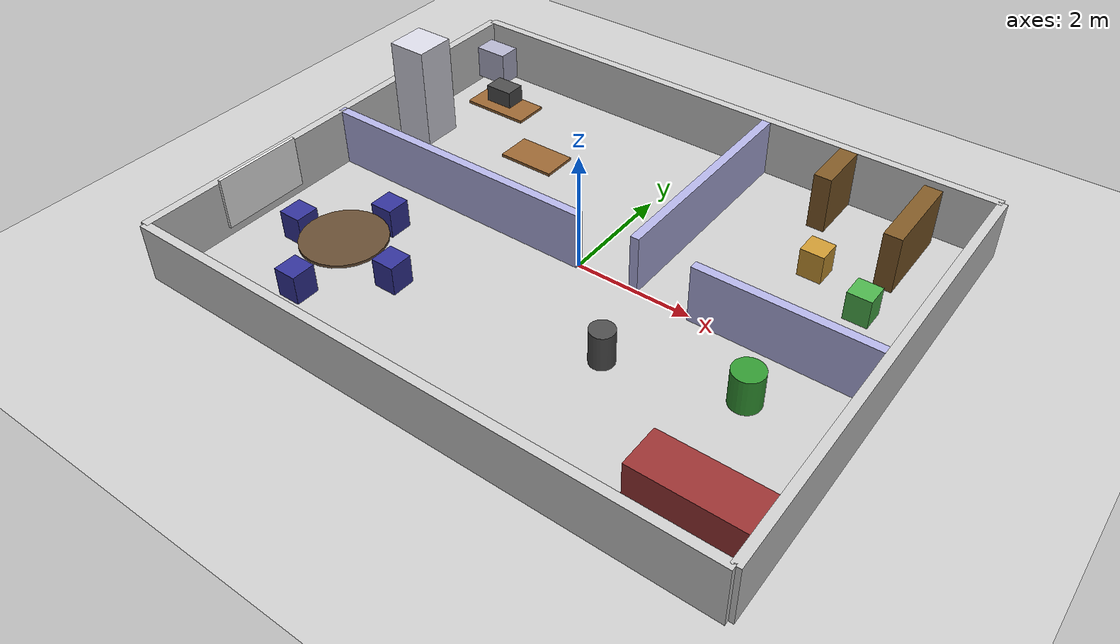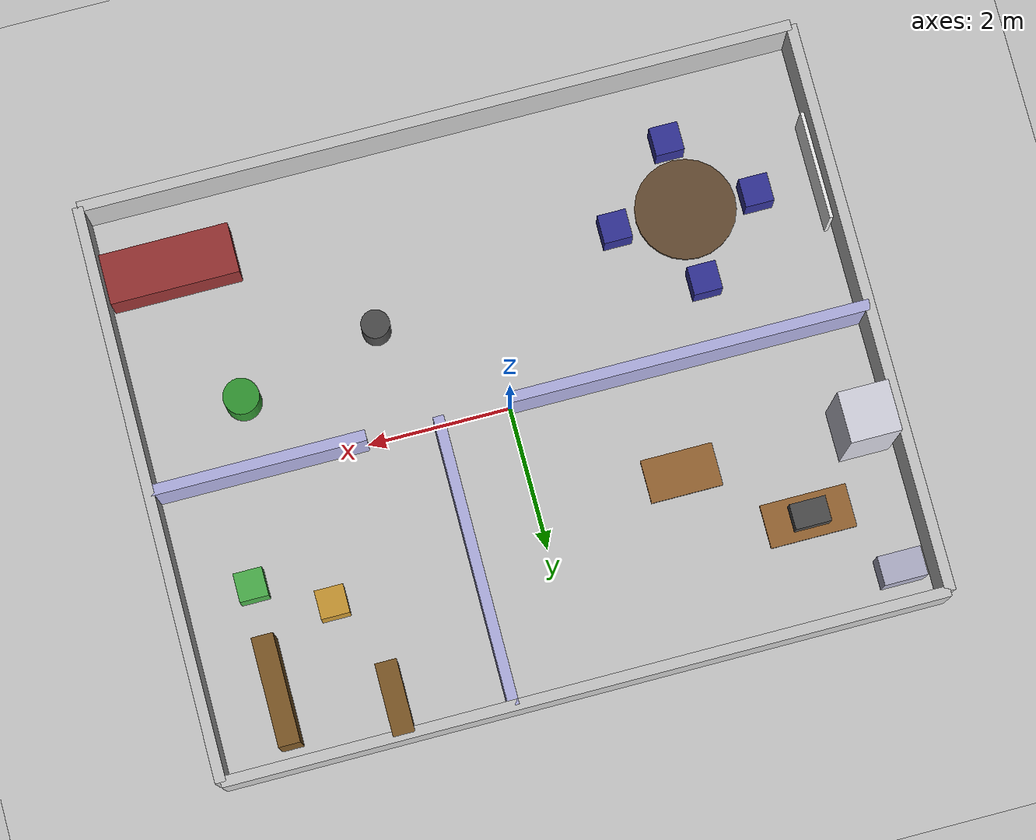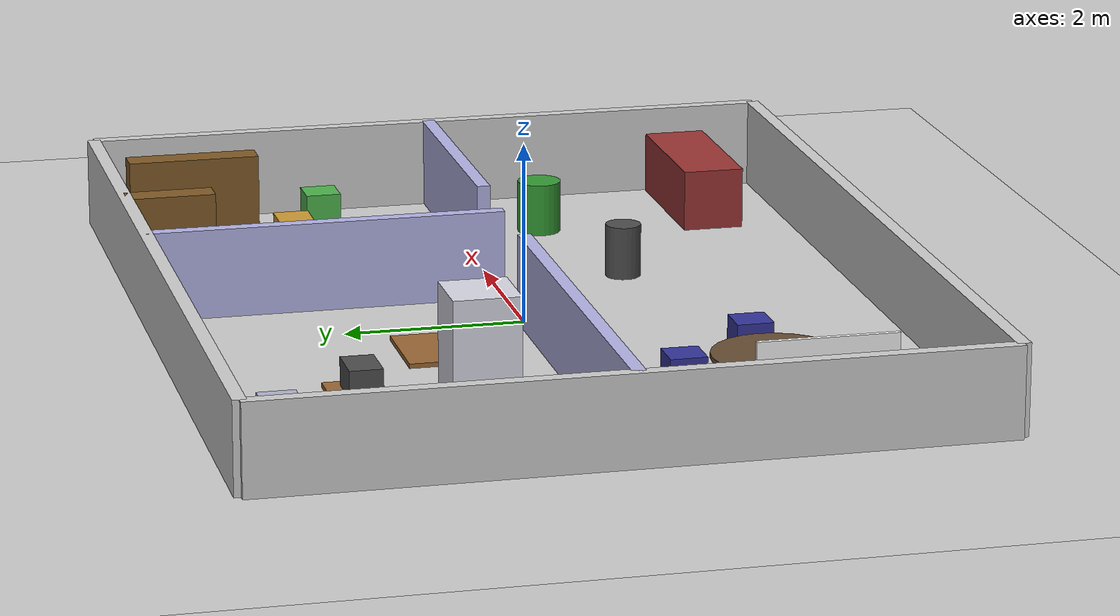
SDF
<?xml version="1.0" ?>
<sdf version="1.6">
  <world name="office_semantic">

    <!-- Lighting -->
    <include>
      <uri>model://sun</uri>
    </include>
    <include>
      <uri>model://ground_plane</uri>
    </include>

    <physics name="default_physics" default="0" type="ode">
      <max_step_size>0.01</max_step_size>
      <real_time_factor>1</real_time_factor>
      <real_time_update_rate>100</real_time_update_rate>
    </physics>

    <!-- ===== OUTER WALLS (10m x 8m office) ===== -->
    <!-- North wall -->
    <model name="wall_north">
      <static>true</static>
      <pose>0 4 0.5 0 0 0</pose>
      <link name="link">
        <collision name="collision"><geometry><box><size>10 0.15 1</size></box></geometry></collision>
        <visual name="visual"><geometry><box><size>10 0.15 1</size></box></geometry>
          <material><ambient>0.8 0.8 0.8 1</ambient></material></visual>
      </link>
    </model>

    <!-- South wall -->
    <model name="wall_south">
      <static>true</static>
      <pose>0 -4 0.5 0 0 0</pose>
      <link name="link">
        <collision name="collision"><geometry><box><size>10 0.15 1</size></box></geometry></collision>
        <visual name="visual"><geometry><box><size>10 0.15 1</size></box></geometry>
          <material><ambient>0.8 0.8 0.8 1</ambient></material></visual>
      </link>
    </model>

    <!-- East wall -->
    <model name="wall_east">
      <static>true</static>
      <pose>5 0 0.5 0 0 0</pose>
      <link name="link">
        <collision name="collision"><geometry><box><size>0.15 8 1</size></box></geometry></collision>
        <visual name="visual"><geometry><box><size>0.15 8 1</size></box></geometry>
          <material><ambient>0.8 0.8 0.8 1</ambient></material></visual>
      </link>
    </model>

    <!-- West wall -->
    <model name="wall_west">
      <static>true</static>
      <pose>-5 0 0.5 0 0 0</pose>
      <link name="link">
        <collision name="collision"><geometry><box><size>0.15 8 1</size></box></geometry></collision>
        <visual name="visual"><geometry><box><size>0.15 8 1</size></box></geometry>
          <material><ambient>0.8 0.8 0.8 1</ambient></material></visual>
      </link>
    </model>

    <!-- ===== INTERIOR DIVIDERS ===== -->
    <!-- Horizontal divider (splits north/south halves), with gap for hallway -->
    <model name="divider_h_west">
      <static>true</static>
      <pose>-2.5 0 0.5 0 0 0</pose>
      <link name="link">
        <collision name="collision"><geometry><box><size>5 0.15 1</size></box></geometry></collision>
        <visual name="visual"><geometry><box><size>5 0.15 1</size></box></geometry>
          <material><ambient>0.7 0.7 0.9 1</ambient></material></visual>
      </link>
    </model>

    <model name="divider_h_east">
      <static>true</static>
      <pose>3.5 0 0.5 0 0 0</pose>
      <link name="link">
        <collision name="collision"><geometry><box><size>3 0.15 1</size></box></geometry></collision>
        <visual name="visual"><geometry><box><size>3 0.15 1</size></box></geometry>
          <material><ambient>0.7 0.7 0.9 1</ambient></material></visual>
      </link>
    </model>

    <!-- Vertical divider splitting kitchen/pantry (north side) -->
    <model name="divider_v_north">
      <static>true</static>
      <pose>1 2 0.5 0 0 1.5708</pose>
      <link name="link">
        <collision name="collision"><geometry><box><size>4 0.15 1</size></box></geometry></collision>
        <visual name="visual"><geometry><box><size>4 0.15 1</size></box></geometry>
          <material><ambient>0.7 0.7 0.9 1</ambient></material></visual>
      </link>
    </model>

    <!-- ===== KITCHEN ZONE (top-left: x=-5..1, y=0..4) ===== -->
    <!-- Kitchen table 1 -->
    <model name="kitchen_table_1">
      <static>true</static>
      <pose>-3.5 2.5 0.4 0 0 0</pose>
      <link name="link">
        <collision name="collision"><geometry><box><size>1.2 0.6 0.05</size></box></geometry></collision>
        <visual name="visual"><geometry><box><size>1.2 0.6 0.05</size></box></geometry>
          <material><ambient>0.6 0.4 0.2 1</ambient></material></visual>
      </link>
    </model>

    <!-- Microwave-like box on table -->
    <model name="microwave">
      <static>true</static>
      <pose>-3.5 2.5 0.65 0 0 0</pose>
      <link name="link">
        <collision name="collision"><geometry><box><size>0.5 0.35 0.3</size></box></geometry></collision>
        <visual name="visual"><geometry><box><size>0.5 0.35 0.3</size></box></geometry>
          <material><ambient>0.3 0.3 0.3 1</ambient></material></visual>
      </link>
    </model>

    <!-- Sink-like box -->
    <model name="sink">
      <static>true</static>
      <pose>-4.5 3.5 0.5 0 0 0</pose>
      <link name="link">
        <collision name="collision"><geometry><box><size>0.6 0.4 0.6</size></box></geometry></collision>
        <visual name="visual"><geometry><box><size>0.6 0.4 0.6</size></box></geometry>
          <material><ambient>0.7 0.7 0.8 1</ambient></material></visual>
      </link>
    </model>

    <!-- Refrigerator-like box -->
    <model name="refrigerator">
      <static>true</static>
      <pose>-4.5 1.5 0.9 0 0 0</pose>
      <link name="link">
        <collision name="collision"><geometry><box><size>0.7 0.7 1.8</size></box></geometry></collision>
        <visual name="visual"><geometry><box><size>0.7 0.7 1.8</size></box></geometry>
          <material><ambient>0.85 0.85 0.9 1</ambient></material></visual>
      </link>
    </model>

    <!-- Kitchen table 2 -->
    <model name="kitchen_table_2">
      <static>true</static>
      <pose>-2 1.5 0.4 0 0 0</pose>
      <link name="link">
        <collision name="collision"><geometry><box><size>1.0 0.6 0.05</size></box></geometry></collision>
        <visual name="visual"><geometry><box><size>1.0 0.6 0.05</size></box></geometry>
          <material><ambient>0.6 0.4 0.2 1</ambient></material></visual>
      </link>
    </model>

    <!-- ===== PANTRY (top-right: x=1..5, y=0..4) ===== -->
    <!-- Shelf 1 -->
    <model name="pantry_shelf_1">
      <static>true</static>
      <pose>4 3 0.5 0 0 0</pose>
      <link name="link">
        <collision name="collision"><geometry><box><size>0.3 1.5 1.0</size></box></geometry></collision>
        <visual name="visual"><geometry><box><size>0.3 1.5 1.0</size></box></geometry>
          <material><ambient>0.5 0.35 0.15 1</ambient></material></visual>
      </link>
    </model>

    <!-- Shelf 2 -->
    <model name="pantry_shelf_2">
      <static>true</static>
      <pose>2.5 3.5 0.5 0 0 0</pose>
      <link name="link">
        <collision name="collision"><geometry><box><size>0.3 1.0 1.0</size></box></geometry></collision>
        <visual name="visual"><geometry><box><size>0.3 1.0 1.0</size></box></geometry>
          <material><ambient>0.5 0.35 0.15 1</ambient></material></visual>
      </link>
    </model>

    <!-- Pantry boxes -->
    <model name="pantry_box_1">
      <static>true</static>
      <pose>3 2 0.25 0 0 0</pose>
      <link name="link">
        <collision name="collision"><geometry><box><size>0.4 0.4 0.5</size></box></geometry></collision>
        <visual name="visual"><geometry><box><size>0.4 0.4 0.5</size></box></geometry>
          <material><ambient>0.8 0.6 0.2 1</ambient></material></visual>
      </link>
    </model>

    <model name="pantry_box_2">
      <static>true</static>
      <pose>4 1.5 0.25 0 0 0</pose>
      <link name="link">
        <collision name="collision"><geometry><box><size>0.4 0.4 0.5</size></box></geometry></collision>
        <visual name="visual"><geometry><box><size>0.4 0.4 0.5</size></box></geometry>
          <material><ambient>0.3 0.7 0.3 1</ambient></material></visual>
      </link>
    </model>

    <!-- ===== MEETING ROOM (bottom-left: x=-5..0, y=-4..0) ===== -->
    <!-- Round meeting table (approximated with cylinder) -->
    <model name="meeting_table">
      <static>true</static>
      <pose>-3 -2 0.4 0 0 0</pose>
      <link name="link">
        <collision name="collision"><geometry><cylinder><radius>0.7</radius><length>0.05</length></cylinder></geometry></collision>
        <visual name="visual"><geometry><cylinder><radius>0.7</radius><length>0.05</length></cylinder></geometry>
          <material><ambient>0.4 0.3 0.2 1</ambient></material></visual>
      </link>
    </model>

    <!-- 4 chairs around the table -->
    <model name="chair_1">
      <static>true</static>
      <pose>-3 -1 0.25 0 0 0</pose>
      <link name="link">
        <collision name="collision"><geometry><box><size>0.4 0.4 0.5</size></box></geometry></collision>
        <visual name="visual"><geometry><box><size>0.4 0.4 0.5</size></box></geometry>
          <material><ambient>0.2 0.2 0.6 1</ambient></material></visual>
      </link>
    </model>

    <model name="chair_2">
      <static>true</static>
      <pose>-3 -3 0.25 0 0 0</pose>
      <link name="link">
        <collision name="collision"><geometry><box><size>0.4 0.4 0.5</size></box></geometry></collision>
        <visual name="visual"><geometry><box><size>0.4 0.4 0.5</size></box></geometry>
          <material><ambient>0.2 0.2 0.6 1</ambient></material></visual>
      </link>
    </model>

    <model name="chair_3">
      <static>true</static>
      <pose>-2 -2 0.25 0 0 0</pose>
      <link name="link">
        <collision name="collision"><geometry><box><size>0.4 0.4 0.5</size></box></geometry></collision>
        <visual name="visual"><geometry><box><size>0.4 0.4 0.5</size></box></geometry>
          <material><ambient>0.2 0.2 0.6 1</ambient></material></visual>
      </link>
    </model>

    <model name="chair_4">
      <static>true</static>
      <pose>-4 -2 0.25 0 0 0</pose>
      <link name="link">
        <collision name="collision"><geometry><box><size>0.4 0.4 0.5</size></box></geometry></collision>
        <visual name="visual"><geometry><box><size>0.4 0.4 0.5</size></box></geometry>
          <material><ambient>0.2 0.2 0.6 1</ambient></material></visual>
      </link>
    </model>

    <!-- Whiteboard/screen on wall -->
    <model name="whiteboard">
      <static>true</static>
      <pose>-4.8 -2 0.7 0 0 0</pose>
      <link name="link">
        <collision name="collision"><geometry><box><size>0.05 1.5 0.9</size></box></geometry></collision>
        <visual name="visual"><geometry><box><size>0.05 1.5 0.9</size></box></geometry>
          <material><ambient>0.95 0.95 0.95 1</ambient></material></visual>
      </link>
    </model>

    <!-- ===== HALLWAY (bottom-right + center passage) ===== -->
    <!-- Trash can -->
    <model name="trash_can">
      <static>true</static>
      <pose>1.5 -1.5 0.3 0 0 0</pose>
      <link name="link">
        <collision name="collision"><geometry><cylinder><radius>0.2</radius><length>0.6</length></cylinder></geometry></collision>
        <visual name="visual"><geometry><cylinder><radius>0.2</radius><length>0.6</length></cylinder></geometry>
          <material><ambient>0.3 0.3 0.3 1</ambient></material></visual>
      </link>
    </model>

    <!-- Plant pot -->
    <model name="plant">
      <static>true</static>
      <pose>3.5 -1 0.3 0 0 0</pose>
      <link name="link">
        <collision name="collision"><geometry><cylinder><radius>0.25</radius><length>0.6</length></cylinder></geometry></collision>
        <visual name="visual"><geometry><cylinder><radius>0.25</radius><length>0.6</length></cylinder></geometry>
          <material><ambient>0.2 0.6 0.2 1</ambient></material></visual>
      </link>
    </model>

    <!-- Hallway sofa -->
    <model name="sofa">
      <static>true</static>
      <pose>4 -3 0.35 0 0 1.5708</pose>
      <link name="link">
        <collision name="collision"><geometry><box><size>0.7 1.8 0.7</size></box></geometry></collision>
        <visual name="visual"><geometry><box><size>0.7 1.8 0.7</size></box></geometry>
          <material><ambient>0.6 0.2 0.2 1</ambient></material></visual>
      </link>
    </model>

    <!-- Gazebo ROS plugins required for robot spawning and clock -->
    <plugin name="gazebo_ros_state" filename="libgazebo_ros_state.so">
      <ros><namespace>/</namespace></ros>
      <update_rate>1.0</update_rate>
    </plugin>

    <plugin name="gazebo_ros_factory" filename="libgazebo_ros_factory.so">
      <ros><namespace>/</namespace></ros>
    </plugin>

  </world>
</sdf>
